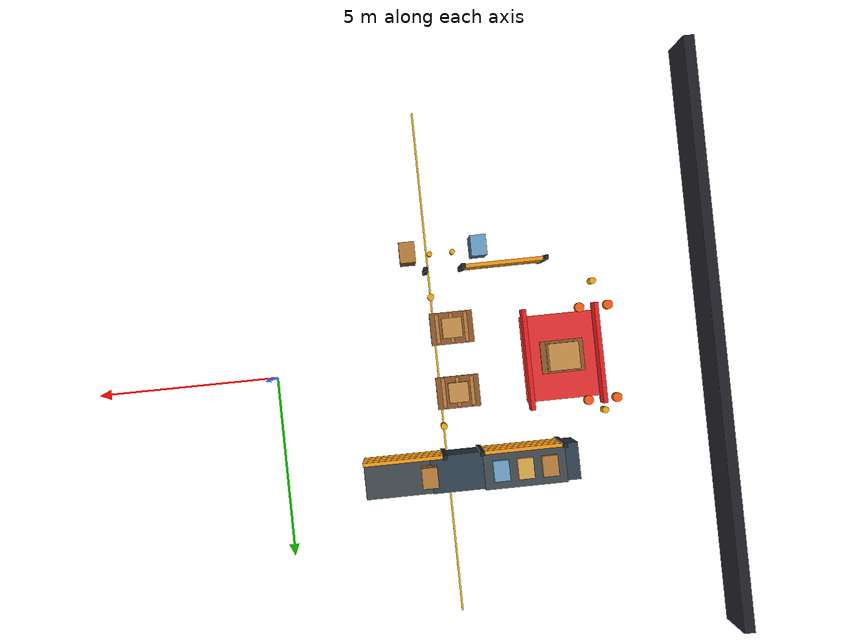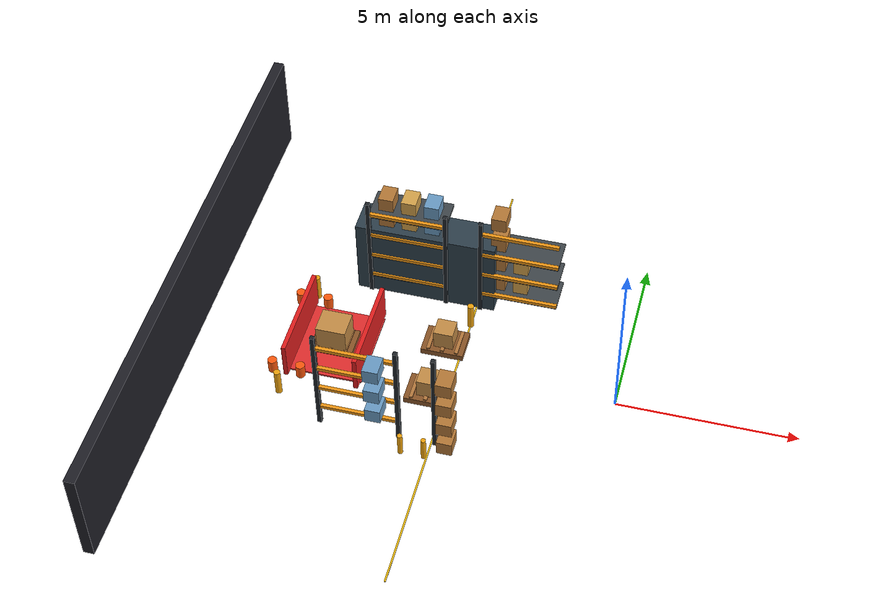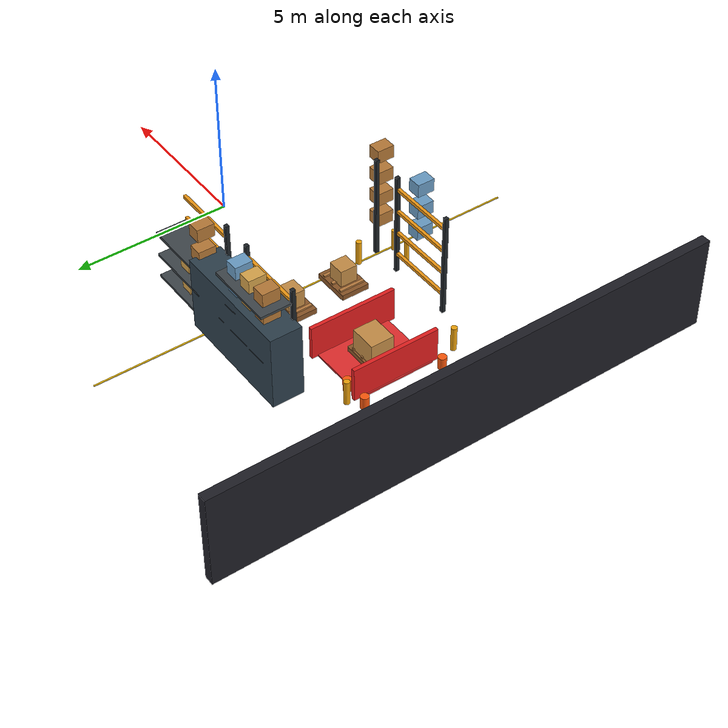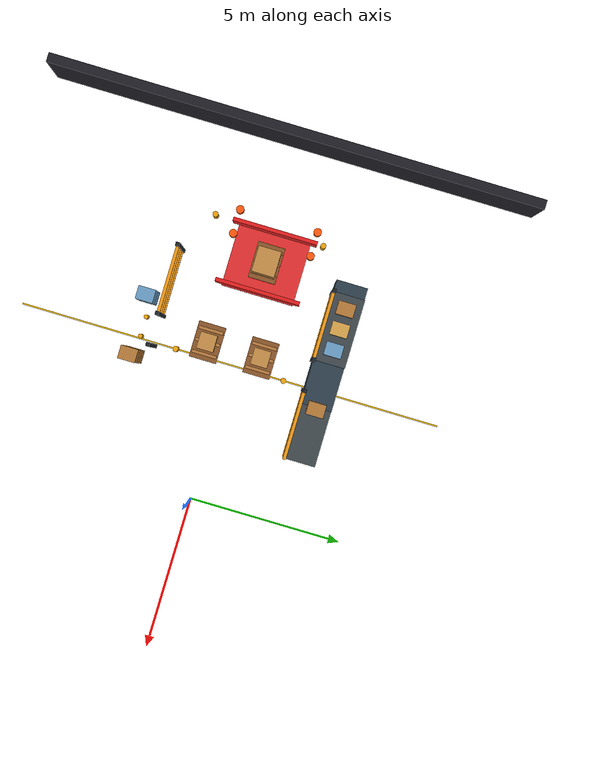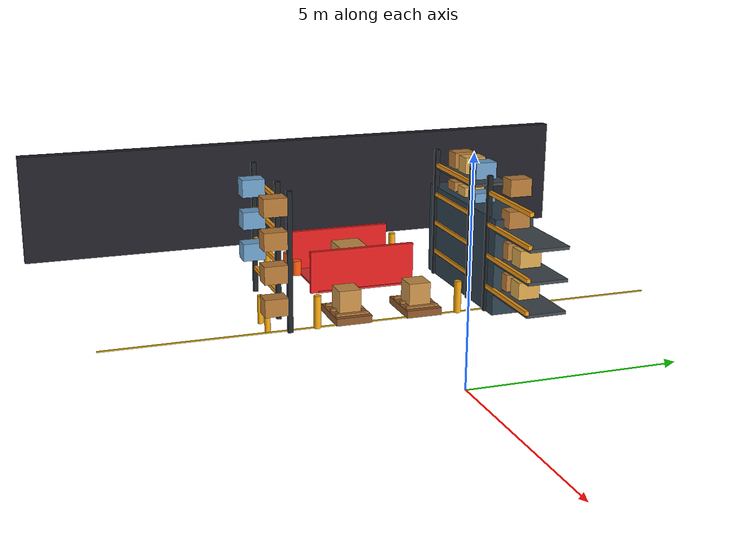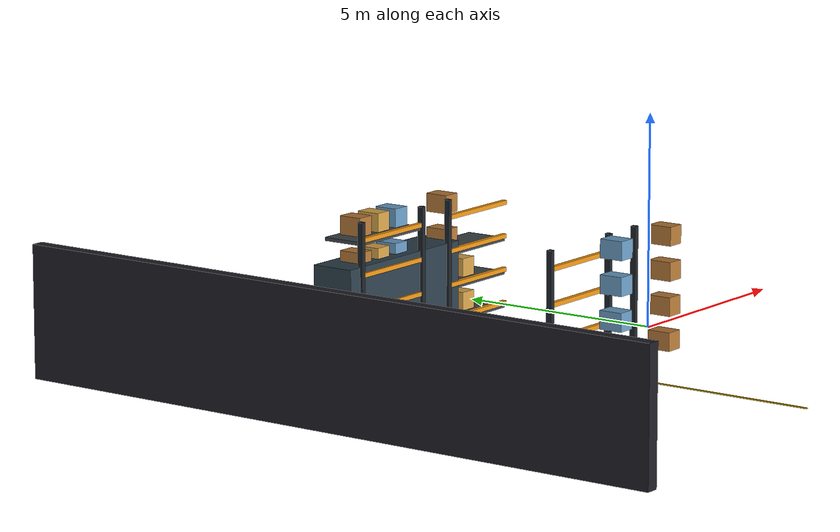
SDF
<sdf version="1.9">
 <world name="synaids_advanced_warehouse">
  <model name="wall_west">
   <static>true</static>
   <pose>-12 0 1.5 0 0 0</pose>
   <link name="link">
    <collision name="collision"><geometry><box><size>0.3 16 3</size></box></geometry></collision>
    <visual name="visual">
     <geometry><box><size>0.3 16 3</size></box></geometry>
     <material><ambient>0.08 0.08 0.10 1</ambient><diffuse>0.12 0.12 0.15 1</diffuse></material>
    </visual>
   </link>
  </model>
  <model name="shelf_1">
   <static>true</static>
   <pose>-6 3 1.2 0 0 0</pose>
   <link name="link">
    <collision name="collision"><geometry><box><size>4 1.0 2.4</size></box></geometry></collision>
    <visual name="visual">
     <geometry><box><size>4 1.0 2.4</size></box></geometry>
     <material><ambient>0.08 0.12 0.16 1</ambient><diffuse>0.18 0.25 0.30 1</diffuse></material>
    </visual>
   </link>
  </model>
  <model name="storage_rack_1_post_0">
   <static>true</static>
   <pose>-7.6 2.5 1.7 0 0 0</pose>
   <link name="link">
    <visual name="visual">
     <geometry><box><size>0.12 0.12 3.4</size></box></geometry>
     <material>
      <ambient>0.12 0.14 0.16 1</ambient>
      <diffuse>0.12 0.14 0.16 1</diffuse>
      <specular>0.15 0.15 0.15 1</specular>
     </material>
    </visual>
    <collision name="collision"><geometry><box><size>0.12 0.12 3.4</size></box></geometry></collision>
   </link>
  </model>
  <model name="storage_rack_1_post_2">
   <static>true</static>
   <pose>-5.4 2.5 1.7 0 0 0</pose>
   <link name="link">
    <visual name="visual">
     <geometry><box><size>0.12 0.12 3.4</size></box></geometry>
     <material>
      <ambient>0.12 0.14 0.16 1</ambient>
      <diffuse>0.12 0.14 0.16 1</diffuse>
      <specular>0.15 0.15 0.15 1</specular>
     </material>
    </visual>
    <collision name="collision"><geometry><box><size>0.12 0.12 3.4</size></box></geometry></collision>
   </link>
  </model>
  <model name="storage_rack_1_beam_front_0">
   <static>true</static>
   <pose>-6.5 2.5 0.65 0 0 0</pose>
   <link name="link">
    <visual name="visual">
     <geometry><box><size>2.2 0.1 0.1</size></box></geometry>
     <material>
      <ambient>0.95 0.60 0.08 1</ambient>
      <diffuse>0.95 0.60 0.08 1</diffuse>
      <specular>0.15 0.15 0.15 1</specular>
     </material>
    </visual>
    <collision name="collision"><geometry><box><size>2.2 0.1 0.1</size></box></geometry></collision>
   </link>
  </model>
  <model name="storage_rack_1_shelf_0">
   <static>true</static>
   <pose>-6.5 3.0 0.5700000000000001 0 0 0</pose>
   <link name="link">
    <visual name="visual">
     <geometry><box><size>2.2 1.0 0.08</size></box></geometry>
     <material>
      <ambient>0.25 0.28 0.30 1</ambient>
      <diffuse>0.25 0.28 0.30 1</diffuse>
      <specular>0.15 0.15 0.15 1</specular>
     </material>
    </visual>
    <collision name="collision"><geometry><box><size>2.2 1.0 0.08</size></box></geometry></collision>
   </link>
  </model>
  <model name="storage_rack_1_package_0_0">
   <static>true</static>
   <pose>-7.15 3.0 0.87 0 0 0</pose>
   <link name="link">
    <visual name="visual">
     <geometry><box><size>0.42 0.55 0.42</size></box></geometry>
     <material>
      <ambient>0.72 0.48 0.22 1</ambient>
      <diffuse>0.72 0.48 0.22 1</diffuse>
      <specular>0.15 0.15 0.15 1</specular>
     </material>
    </visual>
    <collision name="collision"><geometry><box><size>0.42 0.55 0.42</size></box></geometry></collision>
   </link>
  </model>
  <model name="storage_rack_1_package_0_1">
   <static>true</static>
   <pose>-6.5 3.0 0.87 0 0 0</pose>
   <link name="link">
    <visual name="visual">
     <geometry><box><size>0.42 0.55 0.42</size></box></geometry>
     <material>
      <ambient>0.85 0.65 0.30 1</ambient>
      <diffuse>0.85 0.65 0.30 1</diffuse>
      <specular>0.15 0.15 0.15 1</specular>
     </material>
    </visual>
    <collision name="collision"><geometry><box><size>0.42 0.55 0.42</size></box></geometry></collision>
   </link>
  </model>
  <model name="storage_rack_1_package_0_2">
   <static>true</static>
   <pose>-5.8500000000000005 3.0 0.87 0 0 0</pose>
   <link name="link">
    <visual name="visual">
     <geometry><box><size>0.42 0.55 0.42</size></box></geometry>
     <material>
      <ambient>0.42 0.62 0.78 1</ambient>
      <diffuse>0.42 0.62 0.78 1</diffuse>
      <specular>0.15 0.15 0.15 1</specular>
     </material>
    </visual>
    <collision name="collision"><geometry><box><size>0.42 0.55 0.42</size></box></geometry></collision>
   </link>
  </model>
  <model name="storage_rack_1_beam_front_1">
   <static>true</static>
   <pose>-6.5 2.5 1.4300000000000002 0 0 0</pose>
   <link name="link">
    <visual name="visual">
     <geometry><box><size>2.2 0.1 0.1</size></box></geometry>
     <material>
      <ambient>0.95 0.60 0.08 1</ambient>
      <diffuse>0.95 0.60 0.08 1</diffuse>
      <specular>0.15 0.15 0.15 1</specular>
     </material>
    </visual>
    <collision name="collision"><geometry><box><size>2.2 0.1 0.1</size></box></geometry></collision>
   </link>
  </model>
  <model name="storage_rack_1_shelf_1">
   <static>true</static>
   <pose>-6.5 3.0 1.35 0 0 0</pose>
   <link name="link">
    <visual name="visual">
     <geometry><box><size>2.2 1.0 0.08</size></box></geometry>
     <material>
      <ambient>0.25 0.28 0.30 1</ambient>
      <diffuse>0.25 0.28 0.30 1</diffuse>
      <specular>0.15 0.15 0.15 1</specular>
     </material>
    </visual>
    <collision name="collision"><geometry><box><size>2.2 1.0 0.08</size></box></geometry></collision>
   </link>
  </model>
  <model name="storage_rack_1_package_1_0">
   <static>true</static>
   <pose>-7.15 3.0 1.6500000000000001 0 0 0</pose>
   <link name="link">
    <visual name="visual">
     <geometry><box><size>0.42 0.55 0.42</size></box></geometry>
     <material>
      <ambient>0.72 0.48 0.22 1</ambient>
      <diffuse>0.72 0.48 0.22 1</diffuse>
      <specular>0.15 0.15 0.15 1</specular>
     </material>
    </visual>
    <collision name="collision"><geometry><box><size>0.42 0.55 0.42</size></box></geometry></collision>
   </link>
  </model>
  <model name="storage_rack_1_package_1_1">
   <static>true</static>
   <pose>-6.5 3.0 1.6500000000000001 0 0 0</pose>
   <link name="link">
    <visual name="visual">
     <geometry><box><size>0.42 0.55 0.42</size></box></geometry>
     <material>
      <ambient>0.85 0.65 0.30 1</ambient>
      <diffuse>0.85 0.65 0.30 1</diffuse>
      <specular>0.15 0.15 0.15 1</specular>
     </material>
    </visual>
    <collision name="collision"><geometry><box><size>0.42 0.55 0.42</size></box></geometry></collision>
   </link>
  </model>
  <model name="storage_rack_1_package_1_2">
   <static>true</static>
   <pose>-5.8500000000000005 3.0 1.6500000000000001 0 0 0</pose>
   <link name="link">
    <visual name="visual">
     <geometry><box><size>0.42 0.55 0.42</size></box></geometry>
     <material>
      <ambient>0.42 0.62 0.78 1</ambient>
      <diffuse>0.42 0.62 0.78 1</diffuse>
      <specular>0.15 0.15 0.15 1</specular>
     </material>
    </visual>
    <collision name="collision"><geometry><box><size>0.42 0.55 0.42</size></box></geometry></collision>
   </link>
  </model>
  <model name="storage_rack_1_beam_front_2">
   <static>true</static>
   <pose>-6.5 2.5 2.21 0 0 0</pose>
   <link name="link">
    <visual name="visual">
     <geometry><box><size>2.2 0.1 0.1</size></box></geometry>
     <material>
      <ambient>0.95 0.60 0.08 1</ambient>
      <diffuse>0.95 0.60 0.08 1</diffuse>
      <specular>0.15 0.15 0.15 1</specular>
     </material>
    </visual>
    <collision name="collision"><geometry><box><size>2.2 0.1 0.1</size></box></geometry></collision>
   </link>
  </model>
  <model name="storage_rack_1_shelf_2">
   <static>true</static>
   <pose>-6.5 3.0 2.13 0 0 0</pose>
   <link name="link">
    <visual name="visual">
     <geometry><box><size>2.2 1.0 0.08</size></box></geometry>
     <material>
      <ambient>0.25 0.28 0.30 1</ambient>
      <diffuse>0.25 0.28 0.30 1</diffuse>
      <specular>0.15 0.15 0.15 1</specular>
     </material>
    </visual>
    <collision name="collision"><geometry><box><size>2.2 1.0 0.08</size></box></geometry></collision>
   </link>
  </model>
  <model name="storage_rack_1_package_2_0">
   <static>true</static>
   <pose>-7.15 3.0 2.43 0 0 0</pose>
   <link name="link">
    <visual name="visual">
     <geometry><box><size>0.42 0.55 0.42</size></box></geometry>
     <material>
      <ambient>0.72 0.48 0.22 1</ambient>
      <diffuse>0.72 0.48 0.22 1</diffuse>
      <specular>0.15 0.15 0.15 1</specular>
     </material>
    </visual>
    <collision name="collision"><geometry><box><size>0.42 0.55 0.42</size></box></geometry></collision>
   </link>
  </model>
  <model name="storage_rack_1_package_2_1">
   <static>true</static>
   <pose>-6.5 3.0 2.43 0 0 0</pose>
   <link name="link">
    <visual name="visual">
     <geometry><box><size>0.42 0.55 0.42</size></box></geometry>
     <material>
      <ambient>0.85 0.65 0.30 1</ambient>
      <diffuse>0.85 0.65 0.30 1</diffuse>
      <specular>0.15 0.15 0.15 1</specular>
     </material>
    </visual>
    <collision name="collision"><geometry><box><size>0.42 0.55 0.42</size></box></geometry></collision>
   </link>
  </model>
  <model name="storage_rack_1_package_2_2">
   <static>true</static>
   <pose>-5.8500000000000005 3.0 2.43 0 0 0</pose>
   <link name="link">
    <visual name="visual">
     <geometry><box><size>0.42 0.55 0.42</size></box></geometry>
     <material>
      <ambient>0.42 0.62 0.78 1</ambient>
      <diffuse>0.42 0.62 0.78 1</diffuse>
      <specular>0.15 0.15 0.15 1</specular>
     </material>
    </visual>
    <collision name="collision"><geometry><box><size>0.42 0.55 0.42</size></box></geometry></collision>
   </link>
  </model>
  <model name="storage_rack_1_beam_front_3">
   <static>true</static>
   <pose>-6.5 2.5 2.9899999999999998 0 0 0</pose>
   <link name="link">
    <visual name="visual">
     <geometry><box><size>2.2 0.1 0.1</size></box></geometry>
     <material>
      <ambient>0.95 0.60 0.08 1</ambient>
      <diffuse>0.95 0.60 0.08 1</diffuse>
      <specular>0.15 0.15 0.15 1</specular>
     </material>
    </visual>
    <collision name="collision"><geometry><box><size>2.2 0.1 0.1</size></box></geometry></collision>
   </link>
  </model>
  <model name="storage_rack_1_shelf_3">
   <static>true</static>
   <pose>-6.5 3.0 2.9099999999999997 0 0 0</pose>
   <link name="link">
    <visual name="visual">
     <geometry><box><size>2.2 1.0 0.08</size></box></geometry>
     <material>
      <ambient>0.25 0.28 0.30 1</ambient>
      <diffuse>0.25 0.28 0.30 1</diffuse>
      <specular>0.15 0.15 0.15 1</specular>
     </material>
    </visual>
    <collision name="collision"><geometry><box><size>2.2 1.0 0.08</size></box></geometry></collision>
   </link>
  </model>
  <model name="storage_rack_1_package_3_0">
   <static>true</static>
   <pose>-7.15 3.0 3.21 0 0 0</pose>
   <link name="link">
    <visual name="visual">
     <geometry><box><size>0.42 0.55 0.42</size></box></geometry>
     <material>
      <ambient>0.72 0.48 0.22 1</ambient>
      <diffuse>0.72 0.48 0.22 1</diffuse>
      <specular>0.15 0.15 0.15 1</specular>
     </material>
    </visual>
    <collision name="collision"><geometry><box><size>0.42 0.55 0.42</size></box></geometry></collision>
   </link>
  </model>
  <model name="storage_rack_1_package_3_1">
   <static>true</static>
   <pose>-6.5 3.0 3.21 0 0 0</pose>
   <link name="link">
    <visual name="visual">
     <geometry><box><size>0.42 0.55 0.42</size></box></geometry>
     <material>
      <ambient>0.85 0.65 0.30 1</ambient>
      <diffuse>0.85 0.65 0.30 1</diffuse>
      <specular>0.15 0.15 0.15 1</specular>
     </material>
    </visual>
    <collision name="collision"><geometry><box><size>0.42 0.55 0.42</size></box></geometry></collision>
   </link>
  </model>
  <model name="storage_rack_1_package_3_2">
   <static>true</static>
   <pose>-5.8500000000000005 3.0 3.21 0 0 0</pose>
   <link name="link">
    <visual name="visual">
     <geometry><box><size>0.42 0.55 0.42</size></box></geometry>
     <material>
      <ambient>0.42 0.62 0.78 1</ambient>
      <diffuse>0.42 0.62 0.78 1</diffuse>
      <specular>0.15 0.15 0.15 1</specular>
     </material>
    </visual>
    <collision name="collision"><geometry><box><size>0.42 0.55 0.42</size></box></geometry></collision>
   </link>
  </model>
  <model name="storage_rack_1_guard_left">
   <static>true</static>
   <pose>-7.779999999999999 3.0 0.35 0 0 0</pose>
   <link name="link">
    <visual name="visual">
     <geometry><cylinder><radius>0.07</radius><length>0.7</length></cylinder></geometry>
     <material>
      <ambient>0.95 0.65 0.05 1</ambient>
      <diffuse>0.95 0.65 0.05 1</diffuse>
      <specular>0.15 0.15 0.15 1</specular>
     </material>
    </visual>
    <collision name="collision">
     <geometry><cylinder><radius>0.07</radius><length>0.7</length></cylinder></geometry>
    </collision>
   </link>
  </model>
  <model name="storage_rack_1_guard_right">
   <static>true</static>
   <pose>-5.220000000000001 3.0 0.35 0 0 0</pose>
   <link name="link">
    <visual name="visual">
     <geometry><cylinder><radius>0.07</radius><length>0.7</length></cylinder></geometry>
     <material>
      <ambient>0.95 0.65 0.05 1</ambient>
      <diffuse>0.95 0.65 0.05 1</diffuse>
      <specular>0.15 0.15 0.15 1</specular>
     </material>
    </visual>
    <collision name="collision">
     <geometry><cylinder><radius>0.07</radius><length>0.7</length></cylinder></geometry>
    </collision>
   </link>
  </model>
  <model name="storage_rack_2_post_0">
   <static>true</static>
   <pose>-4.4 2.5 1.7 0 0 0</pose>
   <link name="link">
    <visual name="visual">
     <geometry><box><size>0.12 0.12 3.4</size></box></geometry>
     <material>
      <ambient>0.12 0.14 0.16 1</ambient>
      <diffuse>0.12 0.14 0.16 1</diffuse>
      <specular>0.15 0.15 0.15 1</specular>
     </material>
    </visual>
    <collision name="collision"><geometry><box><size>0.12 0.12 3.4</size></box></geometry></collision>
   </link>
  </model>
  <model name="storage_rack_2_beam_front_0">
   <static>true</static>
   <pose>-3.3 2.5 0.65 0 0 0</pose>
   <link name="link">
    <visual name="visual">
     <geometry><box><size>2.2 0.1 0.1</size></box></geometry>
     <material>
      <ambient>0.95 0.60 0.08 1</ambient>
      <diffuse>0.95 0.60 0.08 1</diffuse>
      <specular>0.15 0.15 0.15 1</specular>
     </material>
    </visual>
    <collision name="collision"><geometry><box><size>2.2 0.1 0.1</size></box></geometry></collision>
   </link>
  </model>
  <model name="storage_rack_2_shelf_0">
   <static>true</static>
   <pose>-3.3 3.0 0.5700000000000001 0 0 0</pose>
   <link name="link">
    <visual name="visual">
     <geometry><box><size>2.2 1.0 0.08</size></box></geometry>
     <material>
      <ambient>0.25 0.28 0.30 1</ambient>
      <diffuse>0.25 0.28 0.30 1</diffuse>
      <specular>0.15 0.15 0.15 1</specular>
     </material>
    </visual>
    <collision name="collision"><geometry><box><size>2.2 1.0 0.08</size></box></geometry></collision>
   </link>
  </model>
  <model name="storage_rack_2_package_0_0">
   <static>true</static>
   <pose>-3.9499999999999997 3.0 0.87 0 0 0</pose>
   <link name="link">
    <visual name="visual">
     <geometry><box><size>0.42 0.55 0.42</size></box></geometry>
     <material>
      <ambient>0.72 0.48 0.22 1</ambient>
      <diffuse>0.72 0.48 0.22 1</diffuse>
      <specular>0.15 0.15 0.15 1</specular>
     </material>
    </visual>
    <collision name="collision"><geometry><box><size>0.42 0.55 0.42</size></box></geometry></collision>
   </link>
  </model>
  <model name="storage_rack_2_package_0_1">
   <static>true</static>
   <pose>-3.3 3.0 0.87 0 0 0</pose>
   <link name="link">
    <visual name="visual">
     <geometry><box><size>0.42 0.55 0.42</size></box></geometry>
     <material>
      <ambient>0.85 0.65 0.30 1</ambient>
      <diffuse>0.85 0.65 0.30 1</diffuse>
      <specular>0.15 0.15 0.15 1</specular>
     </material>
    </visual>
    <collision name="collision"><geometry><box><size>0.42 0.55 0.42</size></box></geometry></collision>
   </link>
  </model>
  <model name="storage_rack_2_beam_front_1">
   <static>true</static>
   <pose>-3.3 2.5 1.4300000000000002 0 0 0</pose>
   <link name="link">
    <visual name="visual">
     <geometry><box><size>2.2 0.1 0.1</size></box></geometry>
     <material>
      <ambient>0.95 0.60 0.08 1</ambient>
      <diffuse>0.95 0.60 0.08 1</diffuse>
      <specular>0.15 0.15 0.15 1</specular>
     </material>
    </visual>
    <collision name="collision"><geometry><box><size>2.2 0.1 0.1</size></box></geometry></collision>
   </link>
  </model>
  <model name="storage_rack_2_shelf_1">
   <static>true</static>
   <pose>-3.3 3.0 1.35 0 0 0</pose>
   <link name="link">
    <visual name="visual">
     <geometry><box><size>2.2 1.0 0.08</size></box></geometry>
     <material>
      <ambient>0.25 0.28 0.30 1</ambient>
      <diffuse>0.25 0.28 0.30 1</diffuse>
      <specular>0.15 0.15 0.15 1</specular>
     </material>
    </visual>
    <collision name="collision"><geometry><box><size>2.2 1.0 0.08</size></box></geometry></collision>
   </link>
  </model>
  <model name="storage_rack_2_package_1_0">
   <static>true</static>
   <pose>-3.9499999999999997 3.0 1.6500000000000001 0 0 0</pose>
   <link name="link">
    <visual name="visual">
     <geometry><box><size>0.42 0.55 0.42</size></box></geometry>
     <material>
      <ambient>0.72 0.48 0.22 1</ambient>
      <diffuse>0.72 0.48 0.22 1</diffuse>
      <specular>0.15 0.15 0.15 1</specular>
     </material>
    </visual>
    <collision name="collision"><geometry><box><size>0.42 0.55 0.42</size></box></geometry></collision>
   </link>
  </model>
  <model name="storage_rack_2_package_1_1">
   <static>true</static>
   <pose>-3.3 3.0 1.6500000000000001 0 0 0</pose>
   <link name="link">
    <visual name="visual">
     <geometry><box><size>0.42 0.55 0.42</size></box></geometry>
     <material>
      <ambient>0.85 0.65 0.30 1</ambient>
      <diffuse>0.85 0.65 0.30 1</diffuse>
      <specular>0.15 0.15 0.15 1</specular>
     </material>
    </visual>
    <collision name="collision"><geometry><box><size>0.42 0.55 0.42</size></box></geometry></collision>
   </link>
  </model>
  <model name="storage_rack_2_beam_front_2">
   <static>true</static>
   <pose>-3.3 2.5 2.21 0 0 0</pose>
   <link name="link">
    <visual name="visual">
     <geometry><box><size>2.2 0.1 0.1</size></box></geometry>
     <material>
      <ambient>0.95 0.60 0.08 1</ambient>
      <diffuse>0.95 0.60 0.08 1</diffuse>
      <specular>0.15 0.15 0.15 1</specular>
     </material>
    </visual>
    <collision name="collision"><geometry><box><size>2.2 0.1 0.1</size></box></geometry></collision>
   </link>
  </model>
  <model name="storage_rack_2_shelf_2">
   <static>true</static>
   <pose>-3.3 3.0 2.13 0 0 0</pose>
   <link name="link">
    <visual name="visual">
     <geometry><box><size>2.2 1.0 0.08</size></box></geometry>
     <material>
      <ambient>0.25 0.28 0.30 1</ambient>
      <diffuse>0.25 0.28 0.30 1</diffuse>
      <specular>0.15 0.15 0.15 1</specular>
     </material>
    </visual>
    <collision name="collision"><geometry><box><size>2.2 1.0 0.08</size></box></geometry></collision>
   </link>
  </model>
  <model name="storage_rack_2_package_2_0">
   <static>true</static>
   <pose>-3.9499999999999997 3.0 2.43 0 0 0</pose>
   <link name="link">
    <visual name="visual">
     <geometry><box><size>0.42 0.55 0.42</size></box></geometry>
     <material>
      <ambient>0.72 0.48 0.22 1</ambient>
      <diffuse>0.72 0.48 0.22 1</diffuse>
      <specular>0.15 0.15 0.15 1</specular>
     </material>
    </visual>
    <collision name="collision"><geometry><box><size>0.42 0.55 0.42</size></box></geometry></collision>
   </link>
  </model>
  <model name="storage_rack_2_beam_front_3">
   <static>true</static>
   <pose>-3.3 2.5 2.9899999999999998 0 0 0</pose>
   <link name="link">
    <visual name="visual">
     <geometry><box><size>2.2 0.1 0.1</size></box></geometry>
     <material>
      <ambient>0.95 0.60 0.08 1</ambient>
      <diffuse>0.95 0.60 0.08 1</diffuse>
      <specular>0.15 0.15 0.15 1</specular>
     </material>
    </visual>
    <collision name="collision"><geometry><box><size>2.2 0.1 0.1</size></box></geometry></collision>
   </link>
  </model>
  <model name="storage_rack_2_package_3_0">
   <static>true</static>
   <pose>-3.9499999999999997 3.0 3.21 0 0 0</pose>
   <link name="link">
    <visual name="visual">
     <geometry><box><size>0.42 0.55 0.42</size></box></geometry>
     <material>
      <ambient>0.72 0.48 0.22 1</ambient>
      <diffuse>0.72 0.48 0.22 1</diffuse>
      <specular>0.15 0.15 0.15 1</specular>
     </material>
    </visual>
    <collision name="collision"><geometry><box><size>0.42 0.55 0.42</size></box></geometry></collision>
   </link>
  </model>
  <model name="storage_rack_2_guard_left">
   <static>true</static>
   <pose>-4.58 3.0 0.35 0 0 0</pose>
   <link name="link">
    <visual name="visual">
     <geometry><cylinder><radius>0.07</radius><length>0.7</length></cylinder></geometry>
     <material>
      <ambient>0.95 0.65 0.05 1</ambient>
      <diffuse>0.95 0.65 0.05 1</diffuse>
      <specular>0.15 0.15 0.15 1</specular>
     </material>
    </visual>
    <collision name="collision">
     <geometry><cylinder><radius>0.07</radius><length>0.7</length></cylinder></geometry>
    </collision>
   </link>
  </model>
  <model name="storage_rack_5_post_1">
   <static>true</static>
   <pose>-7.6 -2.5 1.7 0 0 0</pose>
   <link name="link">
    <visual name="visual">
     <geometry><box><size>0.12 0.12 3.4</size></box></geometry>
     <material>
      <ambient>0.12 0.14 0.16 1</ambient>
      <diffuse>0.12 0.14 0.16 1</diffuse>
      <specular>0.15 0.15 0.15 1</specular>
     </material>
    </visual>
    <collision name="collision"><geometry><box><size>0.12 0.12 3.4</size></box></geometry></collision>
   </link>
  </model>
  <model name="storage_rack_5_post_3">
   <static>true</static>
   <pose>-5.4 -2.5 1.7 0 0 0</pose>
   <link name="link">
    <visual name="visual">
     <geometry><box><size>0.12 0.12 3.4</size></box></geometry>
     <material>
      <ambient>0.12 0.14 0.16 1</ambient>
      <diffuse>0.12 0.14 0.16 1</diffuse>
      <specular>0.15 0.15 0.15 1</specular>
     </material>
    </visual>
    <collision name="collision"><geometry><box><size>0.12 0.12 3.4</size></box></geometry></collision>
   </link>
  </model>
  <model name="storage_rack_5_beam_back_0">
   <static>true</static>
   <pose>-6.5 -2.5 0.65 0 0 0</pose>
   <link name="link">
    <visual name="visual">
     <geometry><box><size>2.2 0.1 0.1</size></box></geometry>
     <material>
      <ambient>0.95 0.60 0.08 1</ambient>
      <diffuse>0.95 0.60 0.08 1</diffuse>
      <specular>0.15 0.15 0.15 1</specular>
     </material>
    </visual>
    <collision name="collision"><geometry><box><size>2.2 0.1 0.1</size></box></geometry></collision>
   </link>
  </model>
  <model name="storage_rack_5_beam_back_1">
   <static>true</static>
   <pose>-6.5 -2.5 1.4300000000000002 0 0 0</pose>
   <link name="link">
    <visual name="visual">
     <geometry><box><size>2.2 0.1 0.1</size></box></geometry>
     <material>
      <ambient>0.95 0.60 0.08 1</ambient>
      <diffuse>0.95 0.60 0.08 1</diffuse>
      <specular>0.15 0.15 0.15 1</specular>
     </material>
    </visual>
    <collision name="collision"><geometry><box><size>2.2 0.1 0.1</size></box></geometry></collision>
   </link>
  </model>
  <model name="storage_rack_5_package_1_2">
   <static>true</static>
   <pose>-5.8500000000000005 -3.0 1.6500000000000001 0 0 0</pose>
   <link name="link">
    <visual name="visual">
     <geometry><box><size>0.42 0.55 0.42</size></box></geometry>
     <material>
      <ambient>0.42 0.62 0.78 1</ambient>
      <diffuse>0.42 0.62 0.78 1</diffuse>
      <specular>0.15 0.15 0.15 1</specular>
     </material>
    </visual>
    <collision name="collision"><geometry><box><size>0.42 0.55 0.42</size></box></geometry></collision>
   </link>
  </model>
  <model name="storage_rack_5_beam_back_2">
   <static>true</static>
   <pose>-6.5 -2.5 2.21 0 0 0</pose>
   <link name="link">
    <visual name="visual">
     <geometry><box><size>2.2 0.1 0.1</size></box></geometry>
     <material>
      <ambient>0.95 0.60 0.08 1</ambient>
      <diffuse>0.95 0.60 0.08 1</diffuse>
      <specular>0.15 0.15 0.15 1</specular>
     </material>
    </visual>
    <collision name="collision"><geometry><box><size>2.2 0.1 0.1</size></box></geometry></collision>
   </link>
  </model>
  <model name="storage_rack_5_package_2_2">
   <static>true</static>
   <pose>-5.8500000000000005 -3.0 2.43 0 0 0</pose>
   <link name="link">
    <visual name="visual">
     <geometry><box><size>0.42 0.55 0.42</size></box></geometry>
     <material>
      <ambient>0.42 0.62 0.78 1</ambient>
      <diffuse>0.42 0.62 0.78 1</diffuse>
      <specular>0.15 0.15 0.15 1</specular>
     </material>
    </visual>
    <collision name="collision"><geometry><box><size>0.42 0.55 0.42</size></box></geometry></collision>
   </link>
  </model>
  <model name="storage_rack_5_beam_back_3">
   <static>true</static>
   <pose>-6.5 -2.5 2.9899999999999998 0 0 0</pose>
   <link name="link">
    <visual name="visual">
     <geometry><box><size>2.2 0.1 0.1</size></box></geometry>
     <material>
      <ambient>0.95 0.60 0.08 1</ambient>
      <diffuse>0.95 0.60 0.08 1</diffuse>
      <specular>0.15 0.15 0.15 1</specular>
     </material>
    </visual>
    <collision name="collision"><geometry><box><size>2.2 0.1 0.1</size></box></geometry></collision>
   </link>
  </model>
  <model name="storage_rack_5_package_3_2">
   <static>true</static>
   <pose>-5.8500000000000005 -3.0 3.21 0 0 0</pose>
   <link name="link">
    <visual name="visual">
     <geometry><box><size>0.42 0.55 0.42</size></box></geometry>
     <material>
      <ambient>0.42 0.62 0.78 1</ambient>
      <diffuse>0.42 0.62 0.78 1</diffuse>
      <specular>0.15 0.15 0.15 1</specular>
     </material>
    </visual>
    <collision name="collision"><geometry><box><size>0.42 0.55 0.42</size></box></geometry></collision>
   </link>
  </model>
  <model name="storage_rack_5_guard_right">
   <static>true</static>
   <pose>-5.220000000000001 -3.0 0.35 0 0 0</pose>
   <link name="link">
    <visual name="visual">
     <geometry><cylinder><radius>0.07</radius><length>0.7</length></cylinder></geometry>
     <material>
      <ambient>0.95 0.65 0.05 1</ambient>
      <diffuse>0.95 0.65 0.05 1</diffuse>
      <specular>0.15 0.15 0.15 1</specular>
     </material>
    </visual>
    <collision name="collision">
     <geometry><cylinder><radius>0.07</radius><length>0.7</length></cylinder></geometry>
    </collision>
   </link>
  </model>
  <model name="storage_rack_6_post_1">
   <static>true</static>
   <pose>-4.4 -2.5 1.7 0 0 0</pose>
   <link name="link">
    <visual name="visual">
     <geometry><box><size>0.12 0.12 3.4</size></box></geometry>
     <material>
      <ambient>0.12 0.14 0.16 1</ambient>
      <diffuse>0.12 0.14 0.16 1</diffuse>
      <specular>0.15 0.15 0.15 1</specular>
     </material>
    </visual>
    <collision name="collision"><geometry><box><size>0.12 0.12 3.4</size></box></geometry></collision>
   </link>
  </model>
  <model name="storage_rack_6_package_0_0">
   <static>true</static>
   <pose>-3.9499999999999997 -3.0 0.87 0 0 0</pose>
   <link name="link">
    <visual name="visual">
     <geometry><box><size>0.42 0.55 0.42</size></box></geometry>
     <material>
      <ambient>0.72 0.48 0.22 1</ambient>
      <diffuse>0.72 0.48 0.22 1</diffuse>
      <specular>0.15 0.15 0.15 1</specular>
     </material>
    </visual>
    <collision name="collision"><geometry><box><size>0.42 0.55 0.42</size></box></geometry></collision>
   </link>
  </model>
  <model name="storage_rack_6_package_1_0">
   <static>true</static>
   <pose>-3.9499999999999997 -3.0 1.6500000000000001 0 0 0</pose>
   <link name="link">
    <visual name="visual">
     <geometry><box><size>0.42 0.55 0.42</size></box></geometry>
     <material>
      <ambient>0.72 0.48 0.22 1</ambient>
      <diffuse>0.72 0.48 0.22 1</diffuse>
      <specular>0.15 0.15 0.15 1</specular>
     </material>
    </visual>
    <collision name="collision"><geometry><box><size>0.42 0.55 0.42</size></box></geometry></collision>
   </link>
  </model>
  <model name="storage_rack_6_package_2_0">
   <static>true</static>
   <pose>-3.9499999999999997 -3.0 2.43 0 0 0</pose>
   <link name="link">
    <visual name="visual">
     <geometry><box><size>0.42 0.55 0.42</size></box></geometry>
     <material>
      <ambient>0.72 0.48 0.22 1</ambient>
      <diffuse>0.72 0.48 0.22 1</diffuse>
      <specular>0.15 0.15 0.15 1</specular>
     </material>
    </visual>
    <collision name="collision"><geometry><box><size>0.42 0.55 0.42</size></box></geometry></collision>
   </link>
  </model>
  <model name="storage_rack_6_package_3_0">
   <static>true</static>
   <pose>-3.9499999999999997 -3.0 3.21 0 0 0</pose>
   <link name="link">
    <visual name="visual">
     <geometry><box><size>0.42 0.55 0.42</size></box></geometry>
     <material>
      <ambient>0.72 0.48 0.22 1</ambient>
      <diffuse>0.72 0.48 0.22 1</diffuse>
      <specular>0.15 0.15 0.15 1</specular>
     </material>
    </visual>
    <collision name="collision"><geometry><box><size>0.42 0.55 0.42</size></box></geometry></collision>
   </link>
  </model>
  <model name="storage_rack_6_guard_left">
   <static>true</static>
   <pose>-4.58 -3.0 0.35 0 0 0</pose>
   <link name="link">
    <visual name="visual">
     <geometry><cylinder><radius>0.07</radius><length>0.7</length></cylinder></geometry>
     <material>
      <ambient>0.95 0.65 0.05 1</ambient>
      <diffuse>0.95 0.65 0.05 1</diffuse>
      <specular>0.15 0.15 0.15 1</specular>
     </material>
    </visual>
    <collision name="collision">
     <geometry><cylinder><radius>0.07</radius><length>0.7</length></cylinder></geometry>
    </collision>
   </link>
  </model>
  <model name="blocked_aisle_zone">
   <static>true</static>
   <pose>-8.0 0.2 0.025 0 0 0</pose>
   <link name="link">
    <visual name="visual">
     <geometry><box><size>2.2 2.4 0.05</size></box></geometry>
     <material>
      <ambient>0.90 0.18 0.18 1</ambient>
      <diffuse>0.90 0.18 0.18 1</diffuse>
      <specular>0.15 0.15 0.15 1</specular>
     </material>
    </visual>
   </link>
  </model>
  <model name="blocked_pallet_base">
   <static>true</static>
   <pose>-8.0 0.2 0.12 0 0 0</pose>
   <link name="link">
    <visual name="visual">
     <geometry><box><size>1.2 0.9 0.18</size></box></geometry>
     <material>
      <ambient>0.55 0.34 0.16 1</ambient>
      <diffuse>0.55 0.34 0.16 1</diffuse>
      <specular>0.15 0.15 0.15 1</specular>
     </material>
    </visual>
    <collision name="collision"><geometry><box><size>1.2 0.9 0.18</size></box></geometry></collision>
   </link>
  </model>
  <model name="blocked_pallet_slat_0">
   <static>true</static>
   <pose>-8.4 0.2 0.22999999999999998 0 0 0</pose>
   <link name="link">
    <visual name="visual">
     <geometry><box><size>0.1 0.82 0.06</size></box></geometry>
     <material>
      <ambient>0.72 0.48 0.24 1</ambient>
      <diffuse>0.72 0.48 0.24 1</diffuse>
      <specular>0.15 0.15 0.15 1</specular>
     </material>
    </visual>
    <collision name="collision"><geometry><box><size>0.1 0.82 0.06</size></box></geometry></collision>
   </link>
  </model>
  <model name="blocked_pallet_slat_1">
   <static>true</static>
   <pose>-8.0 0.2 0.22999999999999998 0 0 0</pose>
   <link name="link">
    <visual name="visual">
     <geometry><box><size>0.1 0.82 0.06</size></box></geometry>
     <material>
      <ambient>0.72 0.48 0.24 1</ambient>
      <diffuse>0.72 0.48 0.24 1</diffuse>
      <specular>0.15 0.15 0.15 1</specular>
     </material>
    </visual>
    <collision name="collision"><geometry><box><size>0.1 0.82 0.06</size></box></geometry></collision>
   </link>
  </model>
  <model name="blocked_pallet_slat_2">
   <static>true</static>
   <pose>-7.6000000000000005 0.2 0.22999999999999998 0 0 0</pose>
   <link name="link">
    <visual name="visual">
     <geometry><box><size>0.1 0.82 0.06</size></box></geometry>
     <material>
      <ambient>0.72 0.48 0.24 1</ambient>
      <diffuse>0.72 0.48 0.24 1</diffuse>
      <specular>0.15 0.15 0.15 1</specular>
     </material>
    </visual>
    <collision name="collision"><geometry><box><size>0.1 0.82 0.06</size></box></geometry></collision>
   </link>
  </model>
  <model name="blocked_package_1">
   <static>true</static>
   <pose>-8.0 0.2 0.55 0 0 0</pose>
   <link name="link">
    <visual name="visual">
     <geometry><box><size>0.85 0.75 0.75</size></box></geometry>
     <material>
      <ambient>0.78 0.56 0.28 1</ambient>
      <diffuse>0.78 0.56 0.28 1</diffuse>
      <specular>0.15 0.15 0.15 1</specular>
     </material>
    </visual>
    <collision name="collision"><geometry><box><size>0.85 0.75 0.75</size></box></geometry></collision>
   </link>
  </model>
  <model name="safety_bollard_4">
   <static>true</static>
   <pose>-4.5 1.8 0.4 0 0 0</pose>
   <link name="link">
    <visual name="visual">
     <geometry><cylinder><radius>0.09</radius><length>0.8</length></cylinder></geometry>
     <material>
      <ambient>0.95 0.65 0.05 1</ambient>
      <diffuse>0.95 0.65 0.05 1</diffuse>
      <specular>0.15 0.15 0.15 1</specular>
     </material>
    </visual>
    <collision name="collision">
     <geometry><cylinder><radius>0.09</radius><length>0.8</length></cylinder></geometry>
    </collision>
   </link>
  </model>
  <model name="safety_bollard_6">
   <static>true</static>
   <pose>-4.5 -1.8 0.4 0 0 0</pose>
   <link name="link">
    <visual name="visual">
     <geometry><cylinder><radius>0.09</radius><length>0.8</length></cylinder></geometry>
     <material>
      <ambient>0.95 0.65 0.05 1</ambient>
      <diffuse>0.95 0.65 0.05 1</diffuse>
      <specular>0.15 0.15 0.15 1</specular>
     </material>
    </visual>
    <collision name="collision">
     <geometry><cylinder><radius>0.09</radius><length>0.8</length></cylinder></geometry>
    </collision>
   </link>
  </model>
  <model name="safety_bollard_8">
   <static>true</static>
   <pose>-9.0 1.8 0.4 0 0 0</pose>
   <link name="link">
    <visual name="visual">
     <geometry><cylinder><radius>0.09</radius><length>0.8</length></cylinder></geometry>
     <material>
      <ambient>0.95 0.65 0.05 1</ambient>
      <diffuse>0.95 0.65 0.05 1</diffuse>
      <specular>0.15 0.15 0.15 1</specular>
     </material>
    </visual>
    <collision name="collision">
     <geometry><cylinder><radius>0.09</radius><length>0.8</length></cylinder></geometry>
    </collision>
   </link>
  </model>
  <model name="safety_bollard_9">
   <static>true</static>
   <pose>-9.0 -1.8 0.4 0 0 0</pose>
   <link name="link">
    <visual name="visual">
     <geometry><cylinder><radius>0.09</radius><length>0.8</length></cylinder></geometry>
     <material>
      <ambient>0.95 0.65 0.05 1</ambient>
      <diffuse>0.95 0.65 0.05 1</diffuse>
      <specular>0.15 0.15 0.15 1</specular>
     </material>
    </visual>
    <collision name="collision">
     <geometry><cylinder><radius>0.09</radius><length>0.8</length></cylinder></geometry>
    </collision>
   </link>
  </model>
  <model name="blocked_barrier_left">
   <static>true</static>
   <pose>-9.0 0.2 0.55 0 0 0</pose>
   <link name="link">
    <visual name="visual">
     <geometry><box><size>0.12 2.8 1.1</size></box></geometry>
     <material>
      <ambient>0.90 0.12 0.12 1</ambient>
      <diffuse>0.90 0.12 0.12 1</diffuse>
      <specular>0.15 0.15 0.15 1</specular>
     </material>
    </visual>
    <collision name="collision"><geometry><box><size>0.12 2.8 1.1</size></box></geometry></collision>
   </link>
  </model>
  <model name="blocked_barrier_right">
   <static>true</static>
   <pose>-7.0 0.2 0.55 0 0 0</pose>
   <link name="link">
    <visual name="visual">
     <geometry><box><size>0.12 2.8 1.1</size></box></geometry>
     <material>
      <ambient>0.90 0.12 0.12 1</ambient>
      <diffuse>0.90 0.12 0.12 1</diffuse>
      <specular>0.15 0.15 0.15 1</specular>
     </material>
    </visual>
    <collision name="collision"><geometry><box><size>0.12 2.8 1.1</size></box></geometry></collision>
   </link>
  </model>
  <model name="loose_pallet_2_base">
   <static>true</static>
   <pose>-5.0 0.9 0.1 0 0 0</pose>
   <link name="link">
    <visual name="visual">
     <geometry><box><size>1.2 0.9 0.18</size></box></geometry>
     <material>
      <ambient>0.55 0.34 0.16 1</ambient>
      <diffuse>0.55 0.34 0.16 1</diffuse>
      <specular>0.15 0.15 0.15 1</specular>
     </material>
    </visual>
    <collision name="collision"><geometry><box><size>1.2 0.9 0.18</size></box></geometry></collision>
   </link>
  </model>
  <model name="loose_pallet_2_slat_0">
   <static>true</static>
   <pose>-5.4 0.9 0.21000000000000002 0 0 0</pose>
   <link name="link">
    <visual name="visual">
     <geometry><box><size>0.1 0.82 0.06</size></box></geometry>
     <material>
      <ambient>0.72 0.48 0.24 1</ambient>
      <diffuse>0.72 0.48 0.24 1</diffuse>
      <specular>0.15 0.15 0.15 1</specular>
     </material>
    </visual>
    <collision name="collision"><geometry><box><size>0.1 0.82 0.06</size></box></geometry></collision>
   </link>
  </model>
  <model name="loose_pallet_2_slat_1">
   <static>true</static>
   <pose>-5.0 0.9 0.21000000000000002 0 0 0</pose>
   <link name="link">
    <visual name="visual">
     <geometry><box><size>0.1 0.82 0.06</size></box></geometry>
     <material>
      <ambient>0.72 0.48 0.24 1</ambient>
      <diffuse>0.72 0.48 0.24 1</diffuse>
      <specular>0.15 0.15 0.15 1</specular>
     </material>
    </visual>
    <collision name="collision"><geometry><box><size>0.1 0.82 0.06</size></box></geometry></collision>
   </link>
  </model>
  <model name="loose_pallet_2_slat_2">
   <static>true</static>
   <pose>-4.6000000000000005 0.9 0.21000000000000002 0 0 0</pose>
   <link name="link">
    <visual name="visual">
     <geometry><box><size>0.1 0.82 0.06</size></box></geometry>
     <material>
      <ambient>0.72 0.48 0.24 1</ambient>
      <diffuse>0.72 0.48 0.24 1</diffuse>
      <specular>0.15 0.15 0.15 1</specular>
     </material>
    </visual>
    <collision name="collision"><geometry><box><size>0.1 0.82 0.06</size></box></geometry></collision>
   </link>
  </model>
  <model name="loose_package_2">
   <static>true</static>
   <pose>-5.0 0.9 0.48 0 0 0</pose>
   <link name="link">
    <visual name="visual">
     <geometry><box><size>0.55 0.55 0.55</size></box></geometry>
     <material>
      <ambient>0.78 0.56 0.28 1</ambient>
      <diffuse>0.78 0.56 0.28 1</diffuse>
      <specular>0.15 0.15 0.15 1</specular>
     </material>
    </visual>
    <collision name="collision"><geometry><box><size>0.55 0.55 0.55</size></box></geometry></collision>
   </link>
  </model>
  <model name="loose_pallet_4_base">
   <static>true</static>
   <pose>-5.0 -0.9 0.1 0 0 0</pose>
   <link name="link">
    <visual name="visual">
     <geometry><box><size>1.2 0.9 0.18</size></box></geometry>
     <material>
      <ambient>0.55 0.34 0.16 1</ambient>
      <diffuse>0.55 0.34 0.16 1</diffuse>
      <specular>0.15 0.15 0.15 1</specular>
     </material>
    </visual>
    <collision name="collision"><geometry><box><size>1.2 0.9 0.18</size></box></geometry></collision>
   </link>
  </model>
  <model name="loose_pallet_4_slat_0">
   <static>true</static>
   <pose>-5.4 -0.9 0.21000000000000002 0 0 0</pose>
   <link name="link">
    <visual name="visual">
     <geometry><box><size>0.1 0.82 0.06</size></box></geometry>
     <material>
      <ambient>0.72 0.48 0.24 1</ambient>
      <diffuse>0.72 0.48 0.24 1</diffuse>
      <specular>0.15 0.15 0.15 1</specular>
     </material>
    </visual>
    <collision name="collision"><geometry><box><size>0.1 0.82 0.06</size></box></geometry></collision>
   </link>
  </model>
  <model name="loose_pallet_4_slat_1">
   <static>true</static>
   <pose>-5.0 -0.9 0.21000000000000002 0 0 0</pose>
   <link name="link">
    <visual name="visual">
     <geometry><box><size>0.1 0.82 0.06</size></box></geometry>
     <material>
      <ambient>0.72 0.48 0.24 1</ambient>
      <diffuse>0.72 0.48 0.24 1</diffuse>
      <specular>0.15 0.15 0.15 1</specular>
     </material>
    </visual>
    <collision name="collision"><geometry><box><size>0.1 0.82 0.06</size></box></geometry></collision>
   </link>
  </model>
  <model name="loose_pallet_4_slat_2">
   <static>true</static>
   <pose>-4.6000000000000005 -0.9 0.21000000000000002 0 0 0</pose>
   <link name="link">
    <visual name="visual">
     <geometry><box><size>0.1 0.82 0.06</size></box></geometry>
     <material>
      <ambient>0.72 0.48 0.24 1</ambient>
      <diffuse>0.72 0.48 0.24 1</diffuse>
      <specular>0.15 0.15 0.15 1</specular>
     </material>
    </visual>
    <collision name="collision"><geometry><box><size>0.1 0.82 0.06</size></box></geometry></collision>
   </link>
  </model>
  <model name="loose_package_4">
   <static>true</static>
   <pose>-5.0 -0.9 0.48 0 0 0</pose>
   <link name="link">
    <visual name="visual">
     <geometry><box><size>0.55 0.55 0.55</size></box></geometry>
     <material>
      <ambient>0.78 0.56 0.28 1</ambient>
      <diffuse>0.78 0.56 0.28 1</diffuse>
      <specular>0.15 0.15 0.15 1</specular>
     </material>
    </visual>
    <collision name="collision"><geometry><box><size>0.55 0.55 0.55</size></box></geometry></collision>
   </link>
  </model>
  <model name="aisle_boundary_-4.5">
   <static>true</static>
   <pose>-4.5 0 0.012 0 0 0</pose>
   <link name="link">
    <visual name="visual">
     <geometry><box><size>0.045 14 0.025</size></box></geometry>
     <material>
      <ambient>0.95 0.75 0.05 1</ambient>
      <diffuse>0.95 0.75 0.05 1</diffuse>
      <specular>0.15 0.15 0.15 1</specular>
     </material>
    </visual>
   </link>
  </model>
  <model name="traffic_cone_0">
   <static>true</static>
   <pose>-9.4 1.5 0.2 0 0 0</pose>
   <link name="link">
    <visual name="visual">
     <geometry><cylinder><radius>0.13</radius><length>0.4</length></cylinder></geometry>
     <material>
      <ambient>1.0 0.35 0.05 1</ambient>
      <diffuse>1.0 0.35 0.05 1</diffuse>
      <specular>0.15 0.15 0.15 1</specular>
     </material>
    </visual>
    <collision name="collision">
     <geometry><cylinder><radius>0.13</radius><length>0.4</length></cylinder></geometry>
    </collision>
   </link>
  </model>
  <model name="traffic_cone_1">
   <static>true</static>
   <pose>-8.6 1.5 0.2 0 0 0</pose>
   <link name="link">
    <visual name="visual">
     <geometry><cylinder><radius>0.13</radius><length>0.4</length></cylinder></geometry>
     <material>
      <ambient>1.0 0.35 0.05 1</ambient>
      <diffuse>1.0 0.35 0.05 1</diffuse>
      <specular>0.15 0.15 0.15 1</specular>
     </material>
    </visual>
    <collision name="collision">
     <geometry><cylinder><radius>0.13</radius><length>0.4</length></cylinder></geometry>
    </collision>
   </link>
  </model>
  <model name="traffic_cone_2">
   <static>true</static>
   <pose>-9.4 -1.1 0.2 0 0 0</pose>
   <link name="link">
    <visual name="visual">
     <geometry><cylinder><radius>0.13</radius><length>0.4</length></cylinder></geometry>
     <material>
      <ambient>1.0 0.35 0.05 1</ambient>
      <diffuse>1.0 0.35 0.05 1</diffuse>
      <specular>0.15 0.15 0.15 1</specular>
     </material>
    </visual>
    <collision name="collision">
     <geometry><cylinder><radius>0.13</radius><length>0.4</length></cylinder></geometry>
    </collision>
   </link>
  </model>
  <model name="traffic_cone_3">
   <static>true</static>
   <pose>-8.6 -1.1 0.2 0 0 0</pose>
   <link name="link">
    <visual name="visual">
     <geometry><cylinder><radius>0.13</radius><length>0.4</length></cylinder></geometry>
     <material>
      <ambient>1.0 0.35 0.05 1</ambient>
      <diffuse>1.0 0.35 0.05 1</diffuse>
      <specular>0.15 0.15 0.15 1</specular>
     </material>
    </visual>
    <collision name="collision">
     <geometry><cylinder><radius>0.13</radius><length>0.4</length></cylinder></geometry>
    </collision>
   </link>
  </model>
 </world>
</sdf>
